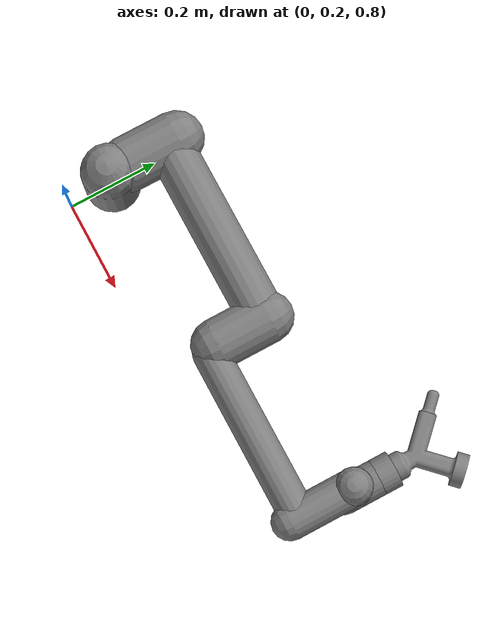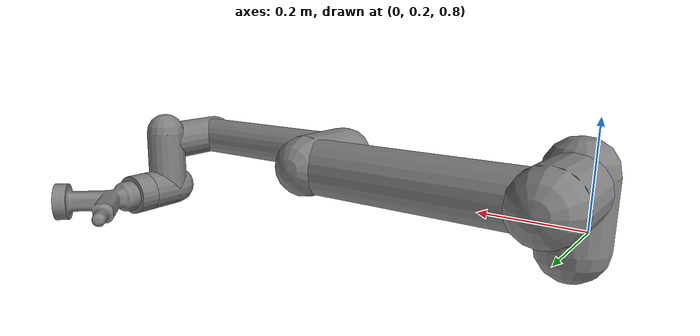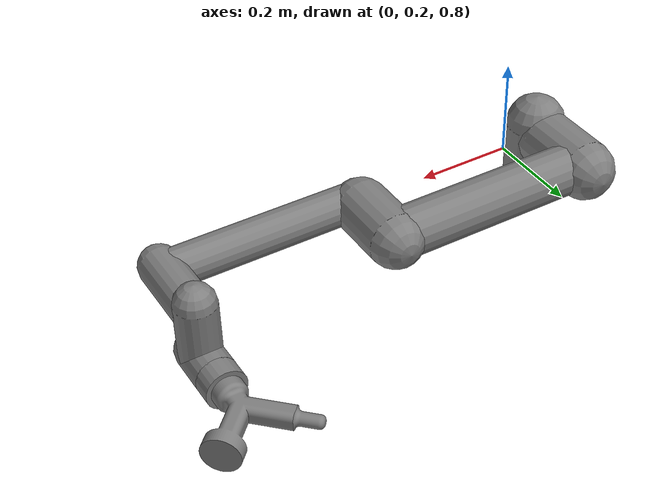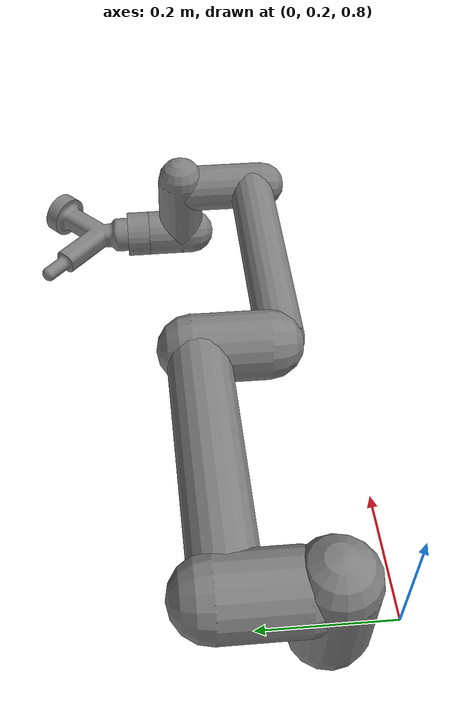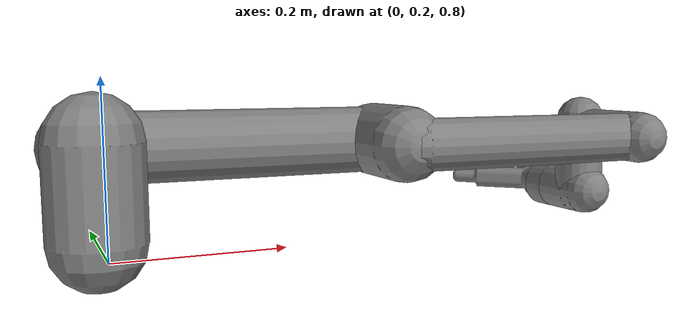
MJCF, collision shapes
<mujoco model="ur5e">
  <compiler angle="radian" meshdir="assets" autolimits="true"/>

  <option integrator="Euler" timestep="0.01" iterations="10" tolerance="1e-10" impratio="20"/>

  <default>
    <default class="ur5e">
      <material specular="0.5" shininess="0.25"/>
      <joint axis="0 1 0" range="-6.28319 6.28319" armature="0.1" damping='100'/>

      <default class="visual">
        <geom type="mesh" contype="0" conaffinity="0" group="2"/>
      </default>
      <default class="collision">
        <geom type="capsule" group="3"/>
        <default class="eef_collision">
          <geom type="cylinder"/>
        </default>
      </default>
      <site size="0.001" rgba="0.5 0.5 0.5 0.3" group="4"/>
    </default>
  </default>

  <asset>
    <material class="ur5e" name="black" rgba="0.033 0.033 0.033 1"/>
    <material class="ur5e" name="jointgray" rgba="0.278 0.278 0.278 1"/>
    <material class="ur5e" name="linkgray" rgba="0.82 0.82 0.82 1"/>
    <material class="ur5e" name="urblue" rgba="0.49 0.678 0.8 1"/>

    <mesh file="base_0.obj"/>
    <mesh file="base_1.obj"/>
    <mesh file="shoulder_0.obj"/>
    <mesh file="shoulder_1.obj"/>
    <mesh file="shoulder_2.obj"/>
    <mesh file="upperarm_0.obj"/>
    <mesh file="upperarm_1.obj"/>
    <mesh file="upperarm_2.obj"/>
    <mesh file="upperarm_3.obj"/>
    <mesh file="forearm_0.obj"/>
    <mesh file="forearm_1.obj"/>
    <mesh file="forearm_2.obj"/>
    <mesh file="forearm_3.obj"/>
    <mesh file="wrist1_0.obj"/>
    <mesh file="wrist1_1.obj"/>
    <mesh file="wrist1_2.obj"/>
    <mesh file="wrist2_0.obj"/>
    <mesh file="wrist2_1.obj"/>
    <mesh file="wrist2_2.obj"/>
    <mesh file="wrist3.obj"/>
    <mesh name ="gripper" file="Tactile_probe.stl" scale= "1 1 1"/>
  </asset>

  <worldbody>
    <light name="spotlight" mode="targetbodycom" target="wrist_2_link" pos="0 -1 2"/>
    <body name="base" pos="0 0.3 0.74" quat=" 1 0 0 0" childclass="ur5e">
      <inertial mass="4.0" pos="0 0 0" diaginertia="0.00443333156 0.00443333156 0.0072"/>
      <geom mesh="base_0" material="black" class="visual"/>
      <geom mesh="base_1" material="jointgray" class="visual"/>
      <body name="shoulder_link" pos="0 0 0.163">
        <inertial mass="3.7" pos="0 0 0" diaginertia="0.0102675 0.0102675 0.00666"/>
        <joint name="joint1" class="ur5e" axis="0 0 1" limited="true" range="-3.14159 3.14159"/>
        <geom mesh="shoulder_0" material="urblue" class="visual"/>
        <geom mesh="shoulder_1" material="black" class="visual"/>
        <geom mesh="shoulder_2" material="jointgray" class="visual"/>
        <geom class="collision" size="0.06 0.06" pos="0 0 -0.04"/>
        <body name="upper_arm_link" pos="0 0.138 0" quat="1 0 1 0">
          <inertial mass="8.393" pos="0 0 0.2125" diaginertia="0.133886 0.133886 0.0151074"/>
          <joint name="joint2" class="ur5e" limited="true" range="-3.14159 3.14159"/>
          <geom mesh="upperarm_0" material="linkgray" class="visual"/>
          <geom mesh="upperarm_1" material="black" class="visual"/>
          <geom mesh="upperarm_2" material="jointgray" class="visual"/>
          <geom mesh="upperarm_3" material="urblue" class="visual"/>
          <geom class="collision" pos="0 -0.04 0" quat="1 1 0 0" size="0.06 0.06"/>
          <geom class="collision" size="0.05 0.2" pos="0 0 0.2"/>
          <body name="forearm_link" pos="0 -0.131 0.425">
            <inertial mass="2.275" pos="0 0 0.196" diaginertia="0.0311796 0.0311796 0.004095"/>
            <joint name="joint3" class="ur5e" limited="true" range="-3.14159 3.14159" />
            <geom mesh="forearm_0" material="urblue" class="visual"/>
            <geom mesh="forearm_1" material="linkgray" class="visual"/>
            <geom mesh="forearm_2" material="black" class="visual"/>
            <geom mesh="forearm_3" material="jointgray" class="visual"/>
            <geom class="collision" pos="0 0.08 0" quat="1 1 0 0" size="0.055 0.06"/>
            <geom class="collision" size="0.038 0.19" pos="0 0 0.2"/>
            <body name="wrist_1_link" pos="0 0 0.392" quat="1 0 1 0">
              <inertial mass="1.219" pos="0 0.127 0" diaginertia="0.0025599 0.0025599 0.0021942"/>
              <joint name="joint4" class="ur5e" limited="true" range="-3.14159 3.14159" />
              <geom mesh="wrist1_0" material="black" class="visual"/>
              <geom mesh="wrist1_1" material="urblue" class="visual"/>
              <geom mesh="wrist1_2" material="jointgray" class="visual"/>
              <geom class="collision" pos="0 0.05 0" quat="1 1 0 0" size="0.04 0.07"/>
              <body name="wrist_2_link" pos="0 0.127 0">

                <inertial mass="1.219" pos="0 0 0.1" diaginertia="0.0025599 0.0025599 0.0021942"/>
                <joint name="joint5" axis="0 0 1" class="ur5e" limited="true" range="-3.14159 3.14159" />
                <geom mesh="wrist2_0" material="black" class="visual"/>
                <geom mesh="wrist2_1" material="urblue" class="visual"/>
                <geom mesh="wrist2_2" material="jointgray" class="visual"/>
                <geom class="collision" size="0.04 0.06" pos="0 0 0.04"/>
                <geom class="collision" pos="0 0.02 0.1" quat="1 1 0 0" size="0.04 0.04"/>
                <body name="wrist_3_link" pos="0 0 0.1">
                  <inertial mass="0.1889" pos="0 0.0771683 0" quat="1 0 0 1"
                    diaginertia="0.000132134 9.90863e-05 9.90863e-05"/>
                  <joint name="joint6" class="ur5e" limited="true" range="-3.14159 3.14159" />
                  <geom material="linkgray" mesh="wrist3" class="visual"/>
                  <geom class="eef_collision" pos="0 0.08 0" quat="1 1 0 0" size="0.04 0.02"/>
                  <!--site name="attachment_site" pos="0 0.1 0" quat="-1 1 0 0"/-->
                  <site name="UR/EE" pos="0 0 0" quat="0 1 0 1" type="sphere" rgba="135 211 124 1" size="1"/>
                    <body name = "gripper" euler="-3.1415 -1.57 0" pos= "0 .1 0" >
                          <geom type="mesh" mesh="gripper"/>
                        </body>
                    </body>
              </body>
            </body>
          </body>
        </body>
      </body>
    </body>
  </worldbody>
  <sensor>
    <force site="UR/EE" name="FTSensor"/>
  </sensor>
  <actuator>
    <position name='actuator1' ctrllimited="true" ctrlrange="-3.14159 3.14159" joint="joint1" kp="1000"/>
    <position name='actuator2' ctrllimited="true" ctrlrange="-3.14159 3.14159" joint="joint2" kp="1000"/>
    <position name='actuator3' ctrllimited="true" ctrlrange="-3.14159 3.14159" joint="joint3" kp="1000"/>
    <position name='actuator4' ctrllimited="true" ctrlrange="-3.14159 3.14159" joint="joint4" kp="1000"/>
    <position name='actuator5' ctrllimited="true" ctrlrange="-3.14159 3.14159" joint="joint5" kp="1000"/>
    <position name='actuator6' ctrllimited="true" ctrlrange="-3.14159 3.14159" joint="joint6" kp="1000"/>
  </actuator>

</mujoco>
